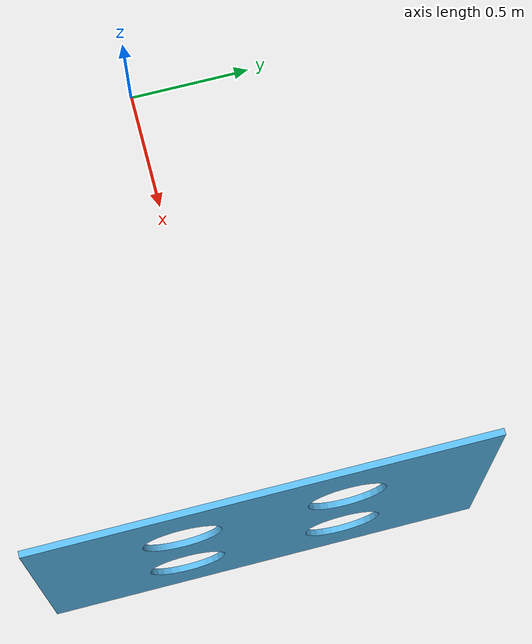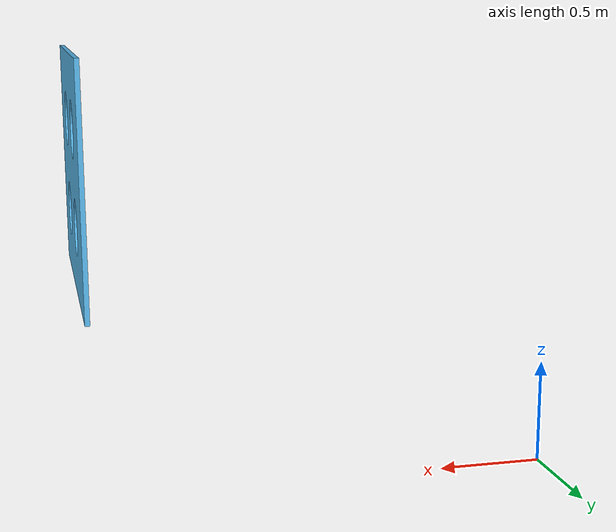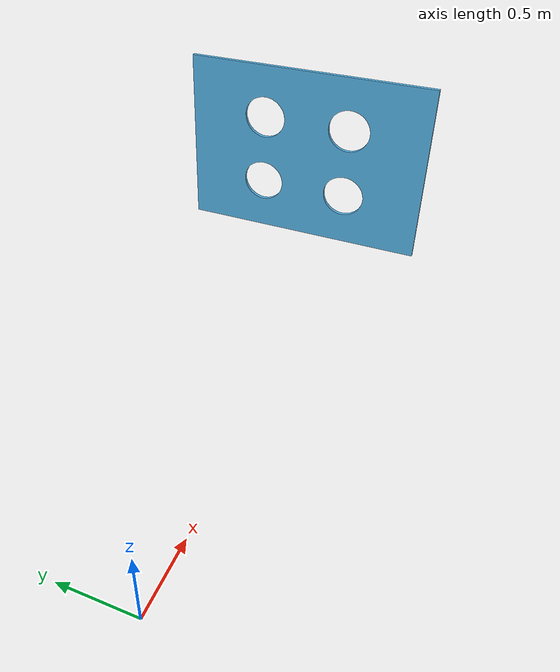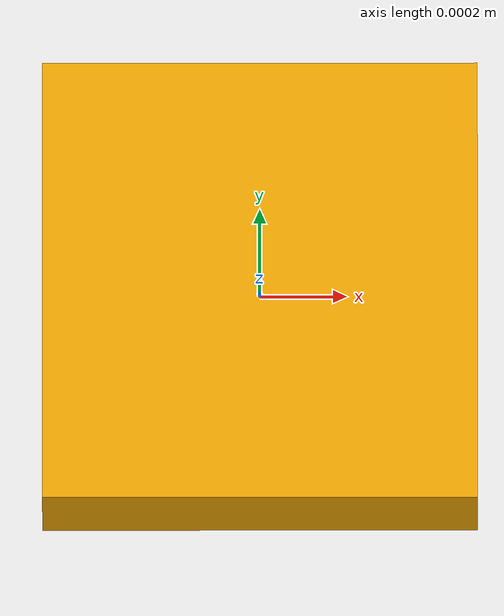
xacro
<?xml version="1.0"?>
<robot xmlns:xacro="http://www.ros.org/wiki/xacro" name="calibration_scene">
  <xacro:include filename="$(find velo2cam_gazebo)/../gazebo_models/calibration_whiteqr_pattern/calibration_whiteqr.urdf.xacro"/>
  <xacro:arg name="xyz" default="2.19 0 1.5" />
  <xacro:arg name="rpy" default="0 0 -3.141591" />

<gazebo>
    <static>true</static>
</gazebo>
<!-- Base Footprint -->
<link name="base_footprint">
    <inertial>
      <mass value="0.0001" />
      <origin xyz="0 0 0" />
      <inertia ixx="0.0001" ixy="0.0" ixz="0.0"
          iyy="0.0001" iyz="0.0"
          izz="0.0001" />
    </inertial>
    <visual>
        <origin xyz="0 0 0" rpy="0 0 0" />
        <geometry>
            <box size="0.001 0.001 0.001" />
        </geometry>
    </visual>
  </link>

  <gazebo reference="base_footprint">
    <static>true</static>
    <turnGravityOff>false</turnGravityOff>
  </gazebo>

  <calibration_whiteqr parent="base_footprint" name="calibration_target" >
    <origin xyz="$(arg xyz)" rpy="$(arg rpy)"/>
  </calibration_whiteqr>
</robot>

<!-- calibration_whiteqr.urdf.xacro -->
<robot xmlns:xacro="http://www.ros.org/wiki/xacro" name="calibration_whiteqr">
<xacro:macro name="calibration_whiteqr" params="parent name *origin">
   <!-- Base Link -->
    <joint name="${name}_base_mount_joint" type="fixed">
      <xacro:insert_block name="origin" />
      <parent link="${parent}"/>
      <child link="${name}_link"/>
    </joint>

    <link name="${name}_link">
      <inertial>
        <mass value="0.1"/>
        <origin xyz="0 0 0" rpy="0 0 0"/>
        <inertia ixx="1e-6" ixy="0" ixz="0" iyy="1e-6" iyz="0" izz="1e-6" />
      </inertial>
      <collision name="collision">
        <geometry>
          <mesh filename="model://calibration_whiteqr_pattern/meshes/whitebig.stl" />
        </geometry>
      </collision>
      <visual name="visual">
        <geometry>
          <mesh filename="model://calibration_whiteqr_pattern/meshes/whitebig.dae" />
        </geometry>
      </visual>
    </link>
    <gazebo reference="${name}_link">
      <static>true</static>
      <turnGravityOff>false</turnGravityOff>
    </gazebo>
</xacro:macro>
</robot>
